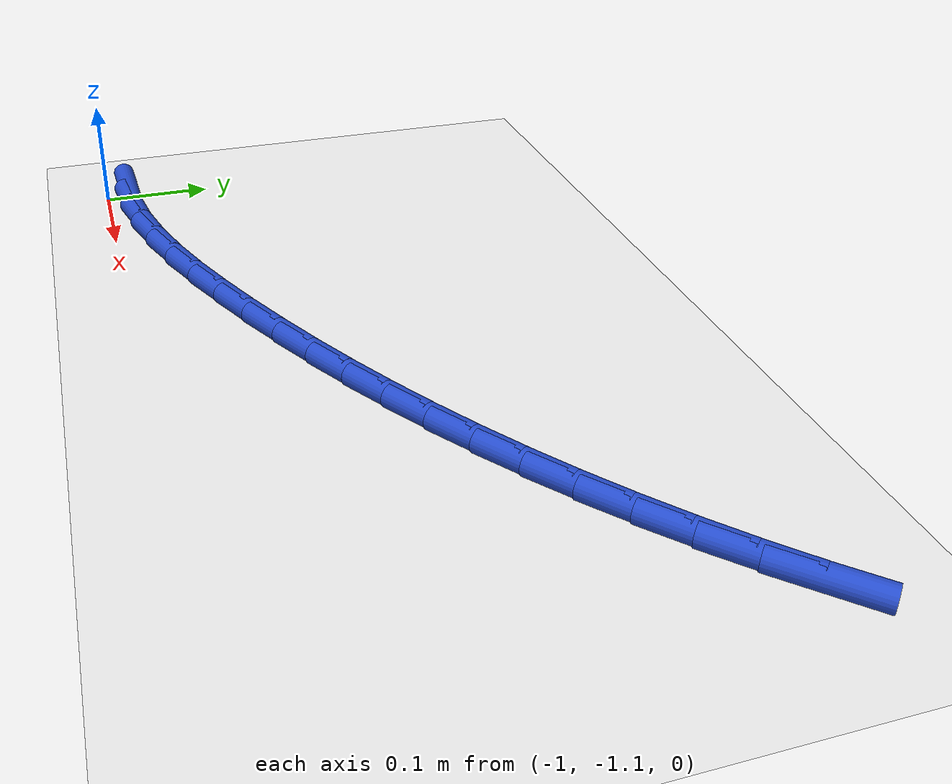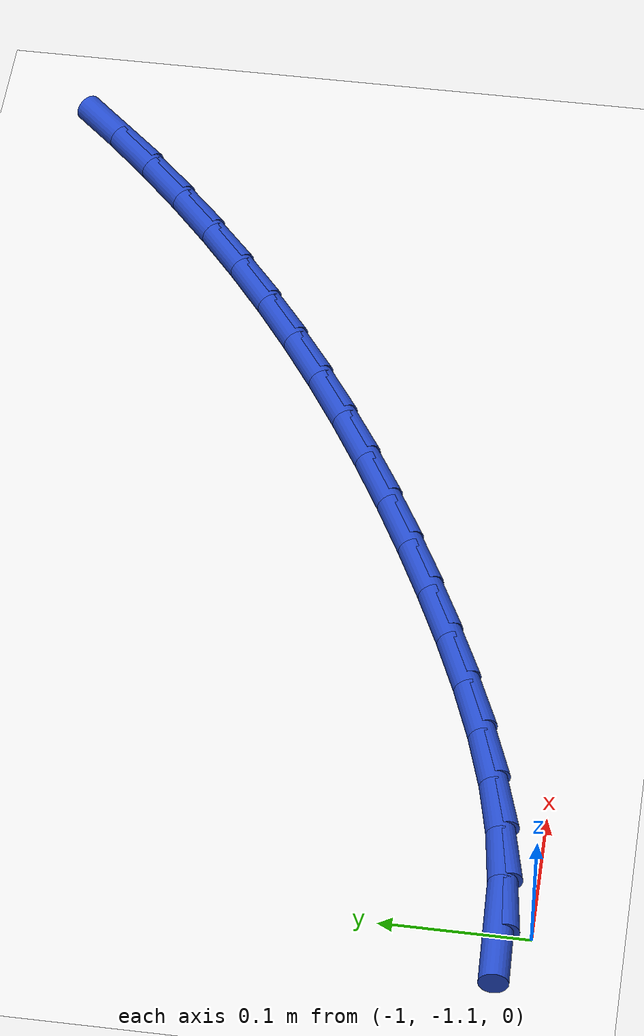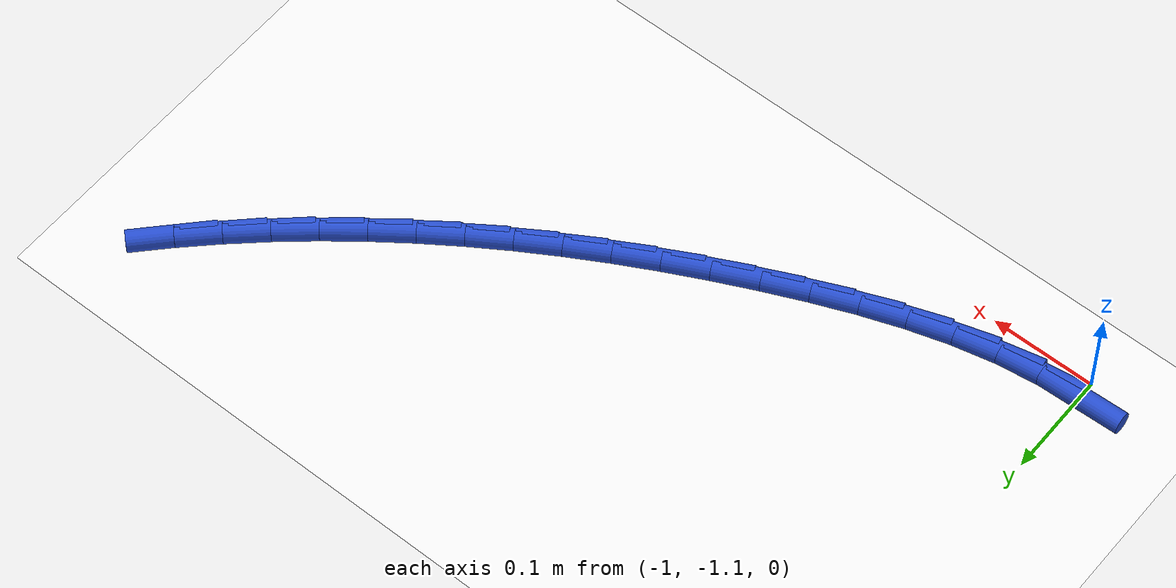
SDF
<sdf version="1.6">
 <world name="default">
  <model name="ground_plane">
   <static>1</static>
   <link name="link">
    <collision name="collision">
     <geometry><plane><normal>0 0 1</normal><size>100 100</size></plane></geometry>
     <surface><friction><ode><mu>100</mu><mu2>50</mu2></ode></friction></surface>
    </collision>
    <visual name="visual">
     <cast_shadows>0</cast_shadows>
     <geometry><plane><normal>0 0 1</normal><size>100 100</size></plane></geometry>
     <material>
      <script><uri>file://media/materials/scripts/gazebo.material</uri><name>Gazebo/WhiteGlow</name></script>
     </material>
    </visual>
   </link>
  </model>
  <model name="line">
   <link name="link_122">
    <pose>-1.0047513598681108 -1.0785960289389502 0.01 0 1.57 0.03451108713935934</pose>
    <collision name="collision">
     <geometry><cylinder><radius>0.01</radius><length>0.08</length></cylinder></geometry>
    </collision>
    <visual name="visual">
     <material>
      <script><name>Gazebo/Blue</name><uri>file://media/materials/scripts/gazebo.material</uri></script>
     </material>
     <geometry><cylinder><radius>0.01</radius><length>0.08</length></cylinder></geometry>
    </visual>
   </link>
   <link name="link_123">
    <pose>-0.964602444106974 -1.077209895863043 0.01 0 1.57 0.13724049597320048</pose>
    <collision name="collision">
     <geometry><cylinder><radius>0.01</radius><length>0.08</length></cylinder></geometry>
    </collision>
    <visual name="visual">
     <material>
      <script><name>Gazebo/Blue</name><uri>file://media/materials/scripts/gazebo.material</uri></script>
     </material>
     <geometry><cylinder><radius>0.01</radius><length>0.08</length></cylinder></geometry>
    </visual>
   </link>
   <link name="link_124">
    <pose>-0.9239523443538772 -1.0715957643709675 0.01 0 1.57 0.22198846354053065</pose>
    <collision name="collision">
     <geometry><cylinder><radius>0.01</radius><length>0.08</length></cylinder></geometry>
    </collision>
    <visual name="visual">
     <material>
      <script><name>Gazebo/Blue</name><uri>file://media/materials/scripts/gazebo.material</uri></script>
     </material>
     <geometry><cylinder><radius>0.01</radius><length>0.08</length></cylinder></geometry>
    </visual>
   </link>
   <link name="link_125">
    <pose>-0.8830159024002633 -1.062356071654123 0.01 0 1.57 0.29057138850968034</pose>
    <collision name="collision">
     <geometry><cylinder><radius>0.01</radius><length>0.08</length></cylinder></geometry>
    </collision>
    <visual name="visual">
     <material>
      <script><name>Gazebo/Blue</name><uri>file://media/materials/scripts/gazebo.material</uri></script>
     </material>
     <geometry><cylinder><radius>0.01</radius><length>0.08</length></cylinder></geometry>
    </visual>
   </link>
   <link name="link_126">
    <pose>-0.8420079600375746 -1.0500932549039077 0.01 0 1.57 0.34495422935476583</pose>
    <collision name="collision">
     <geometry><cylinder><radius>0.01</radius><length>0.08</length></cylinder></geometry>
    </collision>
    <visual name="visual">
     <material>
      <script><name>Gazebo/Blue</name><uri>file://media/materials/scripts/gazebo.material</uri></script>
     </material>
     <geometry><cylinder><radius>0.01</radius><length>0.08</length></cylinder></geometry>
    </visual>
   </link>
   <link name="link_127">
    <pose>-0.8011433590572559 -1.0354097513117209 0.01 0 1.57 0.38685747866840314</pose>
    <collision name="collision">
     <geometry><cylinder><radius>0.01</radius><length>0.08</length></cylinder></geometry>
    </collision>
    <visual name="visual">
     <material>
      <script><name>Gazebo/Blue</name><uri>file://media/materials/scripts/gazebo.material</uri></script>
     </material>
     <geometry><cylinder><radius>0.01</radius><length>0.08</length></cylinder></geometry>
    </visual>
   </link>
   <link name="link_128">
    <pose>-0.7606369412507493 -1.018907998068962 0.01 0 1.57 0.41761452690954265</pose>
    <collision name="collision">
     <geometry><cylinder><radius>0.01</radius><length>0.08</length></cylinder></geometry>
    </collision>
    <visual name="visual">
     <material>
      <script><name>Gazebo/Blue</name><uri>file://media/materials/scripts/gazebo.material</uri></script>
     </material>
     <geometry><cylinder><radius>0.01</radius><length>0.08</length></cylinder></geometry>
    </visual>
   </link>
   <link name="link_129">
    <pose>-0.7207030259616906 -1.0011887454178467 0.01 0 1.57 0.4416187615036908</pose>
    <collision name="collision">
     <geometry><cylinder><radius>0.01</radius><length>0.08</length></cylinder></geometry>
    </collision>
    <visual name="visual">
     <material>
      <script><name>Gazebo/Blue</name><uri>file://media/materials/scripts/gazebo.material</uri></script>
     </material>
     <geometry><cylinder><radius>0.01</radius><length>0.08</length></cylinder></geometry>
    </visual>
   </link>
   <link name="link_130">
    <pose>-0.6814938314768739 -0.9826522234232272 0.01 0 1.57 0.46603617382466245</pose>
    <collision name="collision">
     <geometry><cylinder><radius>0.01</radius><length>0.08</length></cylinder></geometry>
    </collision>
    <visual name="visual">
     <material>
      <script><name>Gazebo/Blue</name><uri>file://media/materials/scripts/gazebo.material</uri></script>
     </material>
     <geometry><cylinder><radius>0.01</radius><length>0.08</length></cylinder></geometry>
    </visual>
   </link>
   <link name="link_131">
    <pose>-0.6430415617614907 -0.9633111438969943 0.01 0 1.57 0.49166802854787245</pose>
    <collision name="collision">
     <geometry><cylinder><radius>0.01</radius><length>0.08</length></cylinder></geometry>
    </collision>
    <visual name="visual">
     <material>
      <script><name>Gazebo/Blue</name><uri>file://media/materials/scripts/gazebo.material</uri></script>
     </material>
     <geometry><cylinder><radius>0.01</radius><length>0.08</length></cylinder></geometry>
    </visual>
   </link>
   <link name="link_132">
    <pose>-0.6053647146029472 -0.9431339623156302 0.01 0 1.57 0.5185096198115866</pose>
    <collision name="collision">
     <geometry><cylinder><radius>0.01</radius><length>0.08</length></cylinder></geometry>
    </collision>
    <visual name="visual">
     <material>
      <script><name>Gazebo/Blue</name><uri>file://media/materials/scripts/gazebo.material</uri></script>
     </material>
     <geometry><cylinder><radius>0.01</radius><length>0.08</length></cylinder></geometry>
    </visual>
   </link>
   <link name="link_133">
    <pose>-0.5684817877886469 -0.9220891341556142 0.01 0 1.57 0.5465472246441048</pose>
    <collision name="collision">
     <geometry><cylinder><radius>0.01</radius><length>0.08</length></cylinder></geometry>
    </collision>
    <visual name="visual">
     <material>
      <script><name>Gazebo/Blue</name><uri>file://media/materials/scripts/gazebo.material</uri></script>
     </material>
     <geometry><cylinder><radius>0.01</radius><length>0.08</length></cylinder></geometry>
    </visual>
   </link>
   <link name="link_134">
    <pose>-0.5324112791059946 -0.9001451148934276 0.01 0 1.57 0.575756950233179</pose>
    <collision name="collision">
     <geometry><cylinder><radius>0.01</radius><length>0.08</length></cylinder></geometry>
    </collision>
    <visual name="visual">
     <material>
      <script><name>Gazebo/Blue</name><uri>file://media/materials/scripts/gazebo.material</uri></script>
     </material>
     <geometry><cylinder><radius>0.01</radius><length>0.08</length></cylinder></geometry>
    </visual>
   </link>
   <link name="link_135">
    <pose>-0.49717168634239467 -0.87727036000555 0.01 0 1.57 0.6061036732403869</pose>
    <collision name="collision">
     <geometry><cylinder><radius>0.01</radius><length>0.08</length></cylinder></geometry>
    </collision>
    <visual name="visual">
     <material>
      <script><name>Gazebo/Blue</name><uri>file://media/materials/scripts/gazebo.material</uri></script>
     </material>
     <geometry><cylinder><radius>0.01</radius><length>0.08</length></cylinder></geometry>
    </visual>
   </link>
   <link name="link_136">
    <pose>-0.4627815072852514 -0.8534333249684624 0.01 0 1.57 0.6375401379824137</pose>
    <collision name="collision">
     <geometry><cylinder><radius>0.01</radius><length>0.08</length></cylinder></geometry>
    </collision>
    <visual name="visual">
     <material>
      <script><name>Gazebo/Blue</name><uri>file://media/materials/scripts/gazebo.material</uri></script>
     </material>
     <geometry><cylinder><radius>0.01</radius><length>0.08</length></cylinder></geometry>
    </visual>
   </link>
   <link name="link_137">
    <pose>-0.42925923972197044 -0.8286024652586454 0.01 0 1.57 0.6700062863847314</pose>
    <collision name="collision">
     <geometry><cylinder><radius>0.01</radius><length>0.08</length></cylinder></geometry>
    </collision>
    <visual name="visual">
     <material>
      <script><name>Gazebo/Blue</name><uri>file://media/materials/scripts/gazebo.material</uri></script>
     </material>
     <geometry><cylinder><radius>0.01</radius><length>0.08</length></cylinder></geometry>
    </visual>
   </link>
   <link name="link_138">
    <pose>-0.3966233814399558 -0.8027462363525798 0.01 0 1.57 0.7034288939694544</pose>
    <collision name="collision">
     <geometry><cylinder><radius>0.01</radius><length>0.08</length></cylinder></geometry>
    </collision>
    <visual name="visual">
     <material>
      <script><name>Gazebo/Blue</name><uri>file://media/materials/scripts/gazebo.material</uri></script>
     </material>
     <geometry><cylinder><radius>0.01</radius><length>0.08</length></cylinder></geometry>
    </visual>
   </link>
   <link name="link_139">
    <pose>-0.3648924302266119 -0.7758330937267455 0.01 0 1.57 0.7377215811999441</pose>
    <collision name="collision">
     <geometry><cylinder><radius>0.01</radius><length>0.08</length></cylinder></geometry>
    </collision>
    <visual name="visual">
     <material>
      <script><name>Gazebo/Blue</name><uri>file://media/materials/scripts/gazebo.material</uri></script>
     </material>
     <geometry><cylinder><radius>0.01</radius><length>0.08</length></cylinder></geometry>
    </visual>
   </link>
   <link name="link_140">
    <pose>-0.33408488386934343 -0.7478314928576233 0.01 0 1.57 0.7727852571242687</pose>
    <collision name="collision">
     <geometry><cylinder><radius>0.01</radius><length>0.08</length></cylinder></geometry>
    </collision>
    <visual name="visual">
     <material>
      <script><name>Gazebo/Blue</name><uri>file://media/materials/scripts/gazebo.material</uri></script>
     </material>
     <geometry><cylinder><radius>0.01</radius><length>0.08</length></cylinder></geometry>
    </visual>
   </link>
   <link name="link_141">
    <pose>-0.3042192401555545 -0.7187098892216933 0.01 0 1.57 0.8085023345926664</pose>
    <collision name="collision">
     <geometry><cylinder><radius>0.01</radius><length>0.08</length></cylinder></geometry>
    </collision>
    <visual name="visual">
     <material>
      <script><name>Gazebo/Blue</name><uri>file://media/materials/scripts/gazebo.material</uri></script>
     </material>
     <geometry><cylinder><radius>0.01</radius><length>0.08</length></cylinder></geometry>
    </visual>
   </link>
  </model>
 </world>
</sdf>
